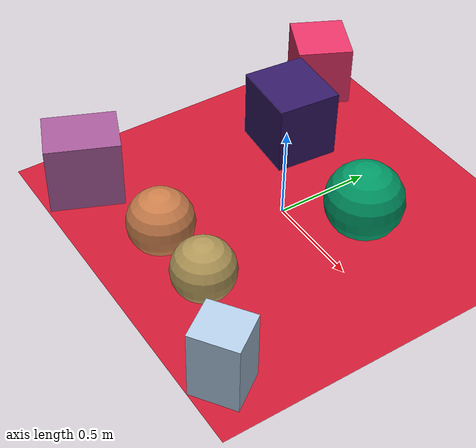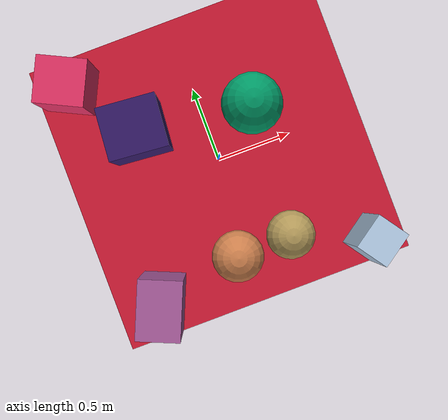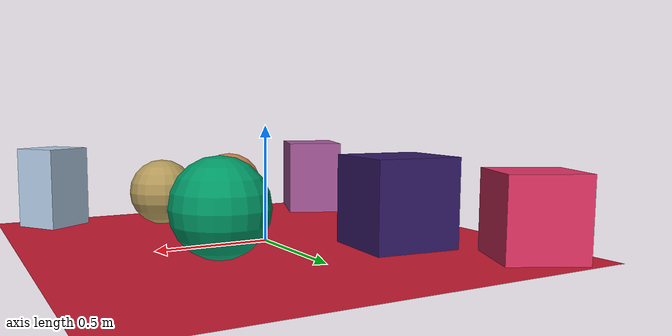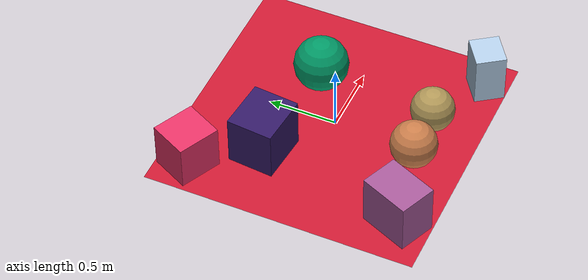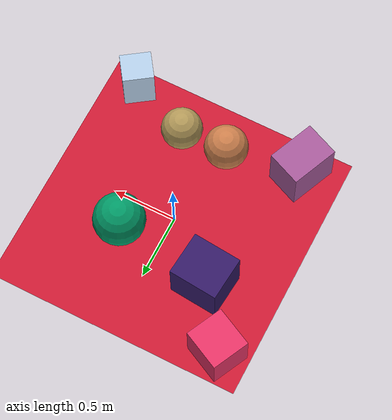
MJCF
<mujoco>
   <asset>
<texture type="skybox" builtin="gradient" rgb1="0.2 1.0 0.0" rgb2="0.4 0.1 0.6" width="256" height="256"/>
<texture name="flat_0" builtin="flat" rgb1="0.7 0.8 0.9" rgb2="0.7 0.8 0.9"  width="200" height="200"/>
<texture name="checker_1" builtin="checker" rgb1="0.9 0.7 0.9" rgb2="0.4 0.0 0.3" width="200" height="200"/>
<texture name="checker_2" builtin="checker" rgb1="0.0 1.0 0.7" rgb2="0.0 0.2 0.1" width="200" height="200"/>
<texture name="flat_3" builtin="flat" rgb1="0.2 0.1 0.4" rgb2="0.2 0.1 0.4"  width="200" height="200"/>
<texture name="flat_4" builtin="flat" rgb1="0.9 0.2 0.4" rgb2="0.9 0.2 0.4"  width="200" height="200"/>
<texture name="flat_5" builtin="flat" rgb1="0.8 0.5 0.3" rgb2="0.8 0.5 0.3"  width="200" height="200"/>
<texture name="checker_6" builtin="checker" rgb1="0.7 0.9 0.3" rgb2="0.7 0.3 0.4" width="200" height="200"/><material name="flat_0_mat" reflectance="0" texture="flat_0" texuniform="true"/>
<material name="checker_1_mat" reflectance="0" texrepeat="8 8" texture="checker_1" texuniform="false" />
<material name="checker_2_mat" reflectance="0" texrepeat="3 3" texture="checker_2" texuniform="false" />
<material name="flat_3_mat" reflectance="0" texture="flat_3" texuniform="true"/>
<material name="flat_4_mat" reflectance="0" texture="flat_4" texuniform="true"/>
<material name="flat_5_mat" reflectance="0" texture="flat_5" texuniform="true"/>
<material name="checker_6_mat" reflectance="0" texrepeat="6 6" texture="checker_6" texuniform="false" />
   </asset>

   <worldbody>
      <light diffuse=".9 .9 .9" pos="0 0 3" dir="0 0 -1"/>
     <geom type="plane" size="1 1 0.1" rgba="0.8 0.1 0.2 1"/>
<geom type="box" pos="0.75 -0.84 0.19" size="0.12 0.11 0.19" material="flat_0_mat" euler="0 0 35" />
<geom type="box" pos="-0.68 -0.76 0.19" size="0.19 0.14 0.19" material="checker_1_mat" euler="0 0 67" />
<geom type="sphere" pos="0.32 0.25 0.2" size="0.2 0.2 0.2" material="checker_2_mat" euler="0 0 7" />
<geom type="box" pos="-0.44 0.35 0.19" size="0.17 0.19 0.19" material="flat_3_mat" euler="0 0 85" />
<geom type="box" pos="-0.76 0.78 0.17" size="0.15 0.16 0.17" material="flat_4_mat" euler="0 0 64" />
<geom type="sphere" pos="-0.11 -0.64 0.17" size="0.17 0.17 0.17" material="flat_5_mat" euler="0 0 77" />
<geom type="sphere" pos="0.26 -0.63 0.16" size="0.16 0.16 0.16" material="checker_6_mat" euler="0 0 5" /><camera euler="60 0 180" fovy="60" name="camera1" pos="-0.2 -1.5 1"></camera>   </worldbody>
</mujoco>
